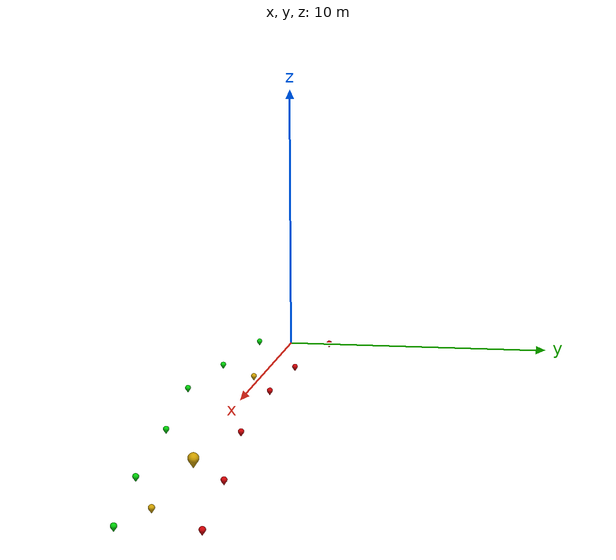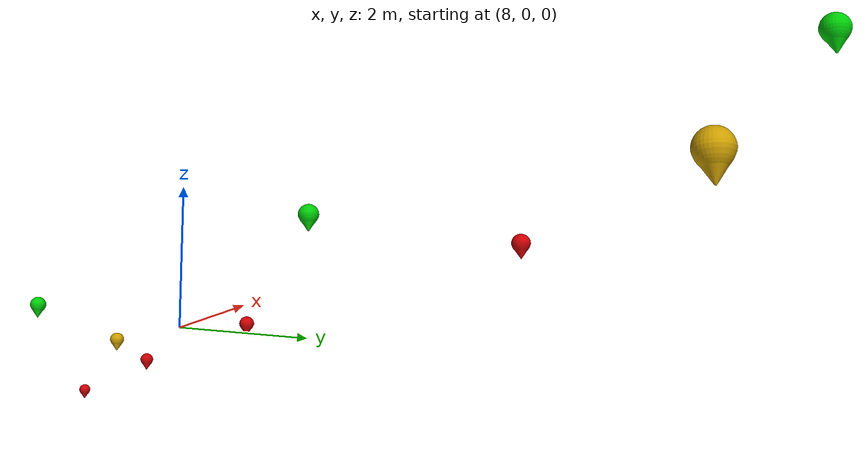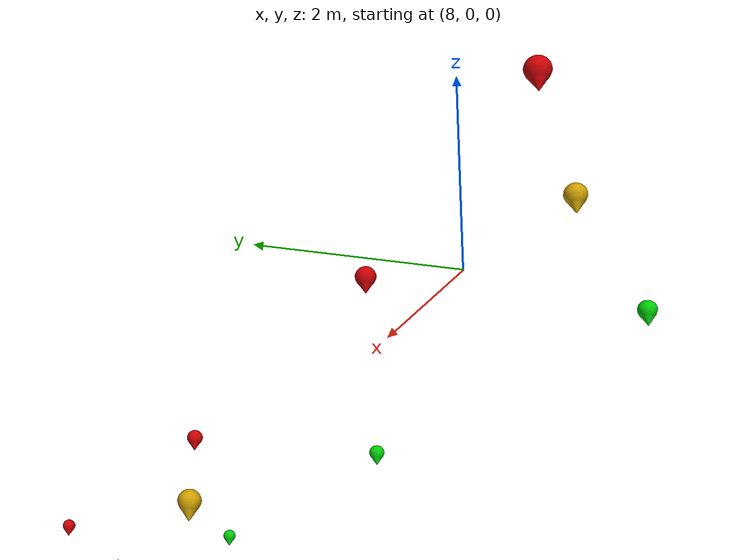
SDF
<?xml version="1.0" ?>
<sdf version="1.6">
  <model name="AvoidCrowds2">
    <link name="avoidcrowds2l">
      <pose>0 0 0 0 0 0</pose>
      <velocity_decay>
        <linear>0.001</linear>
        <angular>0.001</angular>
      </velocity_decay>
      <inertial>
        <pose>0 0 -10 0 0 0</pose>
        <mass>10</mass>
        <inertia>
          <ixx>10</ixx>
          <ixy>0</ixy>
          <ixz>0</ixz>
          <iyy>10</iyy>
          <iyz>0</iyz>
          <izz>10</izz>
        </inertia>
      </inertial>
      <collision name="avoidcrowds2c">
        <geometry>
	  <mesh><uri>model://AvoidCrowds2/mesh/AvoidCrowds2.dae</uri></mesh>
          <cylinder>
            <radius>0.25</radius>
            <length>1.0</length>
          </cylinder>
        </geometry>
      </collision>
      <visual name="avoidcrowds2v">
        <geometry>
	<mesh><uri>model://AvoidCrowds2/mesh/AvoidCrowds2.dae</uri></mesh>
        </geometry>
      </visual>
    </link>
  </model>
</sdf>
